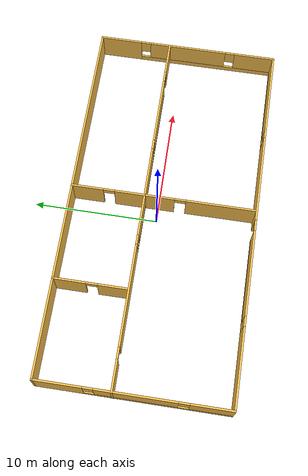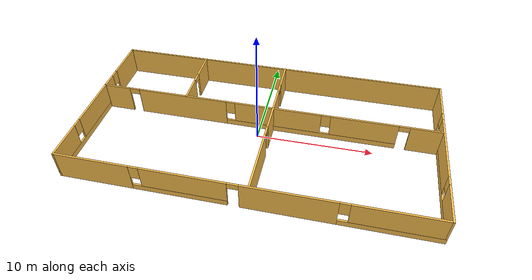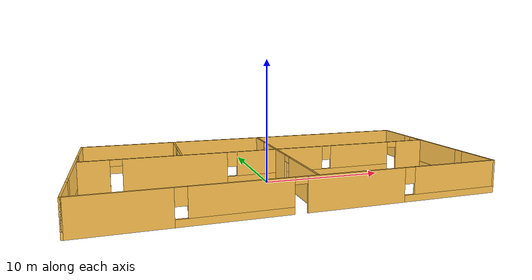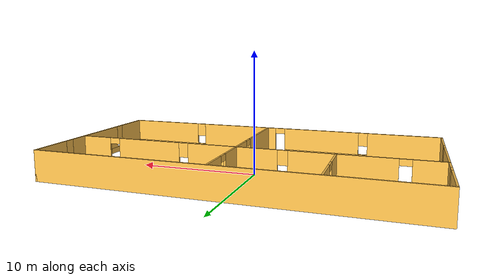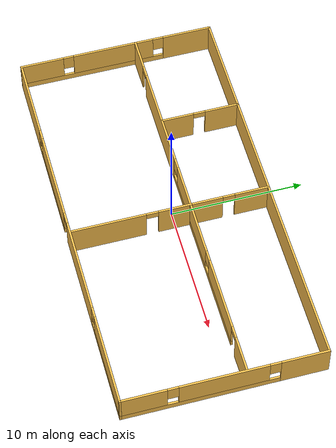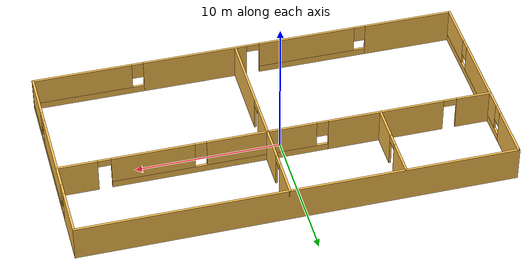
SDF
<?xml version='1.0'?>
<sdf version='1.6'>
  <model name='Building'>
    <pose frame=''>0.457 -0.407 0 0 -0 0</pose>
    <link name='Wall_1'>
      <pose frame=''>-14.92 0 0 0 0 -1.5708</pose>
      <visual name='Wall_1_Visual_0'>
        <pose frame=''>-5.60194 0 1.25 0 -0 0</pose>
        <geometry>
          <box>
            <size>3.79611 0.15 2.5</size>
          </box>
        </geometry>
        <material>
          <script>
            <uri>file://media/materials/scripts/gazebo.material</uri>
            <name>Gazebo/Grey</name>
          </script>
          <ambient>1 0.764706 0.305882 1</ambient>
        </material>
        <meta>
          <layer>0</layer>
        </meta>
      </visual>
      <collision name='Wall_1_Collision_0'>
        <geometry>
          <box>
            <size>3.79611 0.15 2.5</size>
          </box>
        </geometry>
        <pose frame=''>-5.60194 0 1.25 0 -0 0</pose>
      </collision>
      <visual name='Wall_1_Visual_1'>
        <pose frame=''>1.89806 0 0.25 0 -0 0</pose>
        <geometry>
          <box>
            <size>11.2039 0.15 0.5</size>
          </box>
        </geometry>
        <material>
          <script>
            <uri>file://media/materials/scripts/gazebo.material</uri>
            <name>Gazebo/Grey</name>
          </script>
          <ambient>1 0.764706 0.305882 1</ambient>
        </material>
        <meta>
          <layer>0</layer>
        </meta>
      </visual>
      <collision name='Wall_1_Collision_1'>
        <geometry>
          <box>
            <size>11.2039 0.15 0.5</size>
          </box>
        </geometry>
        <pose frame=''>1.89806 0 0.25 0 -0 0</pose>
      </collision>
      <visual name='Wall_1_Visual_2'>
        <pose frame=''>0.228614 0 1.5 0 -0 0</pose>
        <geometry>
          <box>
            <size>6.265 0.15 2</size>
          </box>
        </geometry>
        <material>
          <script>
            <uri>file://media/materials/scripts/gazebo.material</uri>
            <name>Gazebo/Grey</name>
          </script>
          <ambient>1 0.764706 0.305882 1</ambient>
        </material>
        <meta>
          <layer>0</layer>
        </meta>
      </visual>
      <collision name='Wall_1_Collision_2'>
        <geometry>
          <box>
            <size>6.265 0.15 2</size>
          </box>
        </geometry>
        <pose frame=''>0.228614 0 1.5 0 -0 0</pose>
      </collision>
      <visual name='Wall_1_Visual_3'>
        <pose frame=''>5.83056 0 1.5 0 -0 0</pose>
        <geometry>
          <box>
            <size>3.33888 0.15 2</size>
          </box>
        </geometry>
        <material>
          <script>
            <uri>file://media/materials/scripts/gazebo.material</uri>
            <name>Gazebo/Grey</name>
          </script>
          <ambient>1 0.764706 0.305882 1</ambient>
        </material>
        <meta>
          <layer>0</layer>
        </meta>
      </visual>
      <collision name='Wall_1_Collision_3'>
        <geometry>
          <box>
            <size>3.33888 0.15 2</size>
          </box>
        </geometry>
        <pose frame=''>5.83056 0 1.5 0 -0 0</pose>
      </collision>
      <visual name='Wall_1_Visual_4'>
        <pose frame=''>-3.30389 0 1.9 0 -0 0</pose>
        <geometry>
          <box>
            <size>0.8 0.15 1.2</size>
          </box>
        </geometry>
        <material>
          <script>
            <uri>file://media/materials/scripts/gazebo.material</uri>
            <name>Gazebo/Grey</name>
          </script>
          <ambient>1 0.764706 0.305882 1</ambient>
        </material>
        <meta>
          <layer>0</layer>
        </meta>
      </visual>
      <collision name='Wall_1_Collision_4'>
        <geometry>
          <box>
            <size>0.8 0.15 1.2</size>
          </box>
        </geometry>
        <pose frame=''>-3.30389 0 1.9 0 -0 0</pose>
      </collision>
      <visual name='Wall_1_Visual_5'>
        <pose frame=''>3.76112 0 1.9 0 -0 0</pose>
        <geometry>
          <box>
            <size>0.8 0.15 1.2</size>
          </box>
        </geometry>
        <material>
          <script>
            <uri>file://media/materials/scripts/gazebo.material</uri>
            <name>Gazebo/Grey</name>
          </script>
          <ambient>1 0.764706 0.305882 1</ambient>
        </material>
        <meta>
          <layer>0</layer>
        </meta>
      </visual>
      <collision name='Wall_1_Collision_5'>
        <geometry>
          <box>
            <size>0.8 0.15 1.2</size>
          </box>
        </geometry>
        <pose frame=''>3.76112 0 1.9 0 -0 0</pose>
      </collision>
    </link>
    <link name='Wall_12'>
      <pose frame=''>-7.157 4.5 0 0 0 -1.5708</pose>
      <visual name='Wall_12_Visual_0'>
        <pose frame=''>-1.68316 0 1.25 0 -0 0</pose>
        <geometry>
          <box>
            <size>2.63367 0.15 2.5</size>
          </box>
        </geometry>
        <material>
          <script>
            <uri>file://media/materials/scripts/gazebo.material</uri>
            <name>Gazebo/Grey</name>
          </script>
          <ambient>1 0.764706 0.305882 1</ambient>
        </material>
        <meta>
          <layer>0</layer>
        </meta>
      </visual>
      <collision name='Wall_12_Collision_0'>
        <geometry>
          <box>
            <size>2.63367 0.15 2.5</size>
          </box>
        </geometry>
        <pose frame=''>-1.68316 0 1.25 0 -0 0</pose>
      </collision>
      <visual name='Wall_12_Visual_1'>
        <pose frame=''>1.76684 0 1.25 0 -0 0</pose>
        <geometry>
          <box>
            <size>2.46633 0.15 2.5</size>
          </box>
        </geometry>
        <material>
          <script>
            <uri>file://media/materials/scripts/gazebo.material</uri>
            <name>Gazebo/Grey</name>
          </script>
          <ambient>1 0.764706 0.305882 1</ambient>
        </material>
        <meta>
          <layer>0</layer>
        </meta>
      </visual>
      <collision name='Wall_12_Collision_1'>
        <geometry>
          <box>
            <size>2.46633 0.15 2.5</size>
          </box>
        </geometry>
        <pose frame=''>1.76684 0 1.25 0 -0 0</pose>
      </collision>
      <visual name='Wall_12_Visual_2'>
        <pose frame=''>0.083673 0 2.25 0 -0 0</pose>
        <geometry>
          <box>
            <size>0.9 0.15 0.5</size>
          </box>
        </geometry>
        <material>
          <script>
            <uri>file://media/materials/scripts/gazebo.material</uri>
            <name>Gazebo/Grey</name>
          </script>
          <ambient>1 0.764706 0.305882 1</ambient>
        </material>
        <meta>
          <layer>0</layer>
        </meta>
      </visual>
      <collision name='Wall_12_Collision_2'>
        <geometry>
          <box>
            <size>0.9 0.15 0.5</size>
          </box>
        </geometry>
        <pose frame=''>0.083673 0 2.25 0 -0 0</pose>
      </collision>
    </link>
    <link name='Wall_14'>
      <pose frame=''>0.697 4.5 0 0 0 -1.5708</pose>
      <visual name='Wall_14_Visual_0'>
        <pose frame=''>-1.68316 0 1.25 0 -0 0</pose>
        <geometry>
          <box>
            <size>2.63367 0.15 2.5</size>
          </box>
        </geometry>
        <material>
          <script>
            <uri>file://media/materials/scripts/gazebo.material</uri>
            <name>Gazebo/Grey</name>
          </script>
          <ambient>1 0.764706 0.305882 1</ambient>
        </material>
        <meta>
          <layer>0</layer>
        </meta>
      </visual>
      <collision name='Wall_14_Collision_0'>
        <geometry>
          <box>
            <size>2.63367 0.15 2.5</size>
          </box>
        </geometry>
        <pose frame=''>-1.68316 0 1.25 0 -0 0</pose>
      </collision>
      <visual name='Wall_14_Visual_1'>
        <pose frame=''>1.76684 0 1.25 0 -0 0</pose>
        <geometry>
          <box>
            <size>2.46633 0.15 2.5</size>
          </box>
        </geometry>
        <material>
          <script>
            <uri>file://media/materials/scripts/gazebo.material</uri>
            <name>Gazebo/Grey</name>
          </script>
          <ambient>1 0.764706 0.305882 1</ambient>
        </material>
        <meta>
          <layer>0</layer>
        </meta>
      </visual>
      <collision name='Wall_14_Collision_1'>
        <geometry>
          <box>
            <size>2.46633 0.15 2.5</size>
          </box>
        </geometry>
        <pose frame=''>1.76684 0 1.25 0 -0 0</pose>
      </collision>
      <visual name='Wall_14_Visual_2'>
        <pose frame=''>0.083673 0 2.25 0 -0 0</pose>
        <geometry>
          <box>
            <size>0.9 0.15 0.5</size>
          </box>
        </geometry>
        <material>
          <script>
            <uri>file://media/materials/scripts/gazebo.material</uri>
            <name>Gazebo/Grey</name>
          </script>
          <ambient>1 0.764706 0.305882 1</ambient>
        </material>
        <meta>
          <layer>0</layer>
        </meta>
      </visual>
      <collision name='Wall_14_Collision_2'>
        <geometry>
          <box>
            <size>0.9 0.15 0.5</size>
          </box>
        </geometry>
        <pose frame=''>0.083673 0 2.25 0 -0 0</pose>
      </collision>
    </link>
    <link name='Wall_16'>
      <pose frame=''>0.697 -2.85 0 0 0 -1.5708</pose>
      <visual name='Wall_16_Visual_0'>
        <pose frame=''>-3.23943 0 1.25 0 -0 0</pose>
        <geometry>
          <box>
            <size>2.52114 0.15 2.5</size>
          </box>
        </geometry>
        <material>
          <script>
            <uri>file://media/materials/scripts/gazebo.material</uri>
            <name>Gazebo/Grey</name>
          </script>
          <ambient>1 0.764706 0.305882 1</ambient>
        </material>
        <meta>
          <layer>0</layer>
        </meta>
      </visual>
      <collision name='Wall_16_Collision_0'>
        <geometry>
          <box>
            <size>2.52114 0.15 2.5</size>
          </box>
        </geometry>
        <pose frame=''>-3.23943 0 1.25 0 -0 0</pose>
      </collision>
      <visual name='Wall_16_Visual_1'>
        <pose frame=''>1.71057 0 1.25 0 -0 0</pose>
        <geometry>
          <box>
            <size>5.57886 0.15 2.5</size>
          </box>
        </geometry>
        <material>
          <script>
            <uri>file://media/materials/scripts/gazebo.material</uri>
            <name>Gazebo/Grey</name>
          </script>
          <ambient>1 0.764706 0.305882 1</ambient>
        </material>
        <meta>
          <layer>0</layer>
        </meta>
      </visual>
      <collision name='Wall_16_Collision_1'>
        <geometry>
          <box>
            <size>5.57886 0.15 2.5</size>
          </box>
        </geometry>
        <pose frame=''>1.71057 0 1.25 0 -0 0</pose>
      </collision>
      <visual name='Wall_16_Visual_2'>
        <pose frame=''>-1.52886 0 2.25 0 -0 0</pose>
        <geometry>
          <box>
            <size>0.9 0.15 0.5</size>
          </box>
        </geometry>
        <material>
          <script>
            <uri>file://media/materials/scripts/gazebo.material</uri>
            <name>Gazebo/Grey</name>
          </script>
          <ambient>1 0.764706 0.305882 1</ambient>
        </material>
        <meta>
          <layer>0</layer>
        </meta>
      </visual>
      <collision name='Wall_16_Collision_2'>
        <geometry>
          <box>
            <size>0.9 0.15 0.5</size>
          </box>
        </geometry>
        <pose frame=''>-1.52886 0 2.25 0 -0 0</pose>
      </collision>
    </link>
    <link name='Wall_4'>
      <pose frame=''>0.005 -7.425 0 0 -0 0</pose>
      <visual name='Wall_4_Visual_0'>
        <pose frame=''>-11.8455 0 1.25 0 -0 0</pose>
        <geometry>
          <box>
            <size>6.30901 0.15 2.5</size>
          </box>
        </geometry>
        <material>
          <script>
            <uri>file://media/materials/scripts/gazebo.material</uri>
            <name>Gazebo/Grey</name>
          </script>
          <ambient>1 0.764706 0.305882 1</ambient>
        </material>
        <meta>
          <layer>0</layer>
        </meta>
      </visual>
      <collision name='Wall_4_Collision_0'>
        <geometry>
          <box>
            <size>6.30901 0.15 2.5</size>
          </box>
        </geometry>
        <pose frame=''>-11.8455 0 1.25 0 -0 0</pose>
      </collision>
      <visual name='Wall_4_Visual_1'>
        <pose frame=''>3.58082 0 1.25 0 -0 0</pose>
        <geometry>
          <box>
            <size>7.34783 0.15 2.5</size>
          </box>
        </geometry>
        <material>
          <script>
            <uri>file://media/materials/scripts/gazebo.material</uri>
            <name>Gazebo/Grey</name>
          </script>
          <ambient>1 0.764706 0.305882 1</ambient>
        </material>
        <meta>
          <layer>0</layer>
        </meta>
      </visual>
      <collision name='Wall_4_Collision_1'>
        <geometry>
          <box>
            <size>7.34783 0.15 2.5</size>
          </box>
        </geometry>
        <pose frame=''>3.58082 0 1.25 0 -0 0</pose>
      </collision>
      <visual name='Wall_4_Visual_2'>
        <pose frame=''>-4.84204 0 0.25 0 -0 0</pose>
        <geometry>
          <box>
            <size>7.6979 0.15 0.5</size>
          </box>
        </geometry>
        <material>
          <script>
            <uri>file://media/materials/scripts/gazebo.material</uri>
            <name>Gazebo/Grey</name>
          </script>
          <ambient>1 0.764706 0.305882 1</ambient>
        </material>
        <meta>
          <layer>0</layer>
        </meta>
      </visual>
      <collision name='Wall_4_Collision_2'>
        <geometry>
          <box>
            <size>7.6979 0.15 0.5</size>
          </box>
        </geometry>
        <pose frame=''>-4.84204 0 0.25 0 -0 0</pose>
      </collision>
      <visual name='Wall_4_Visual_3'>
        <pose frame=''>11.1274 0 0.25 0 -0 0</pose>
        <geometry>
          <box>
            <size>7.74526 0.15 0.5</size>
          </box>
        </geometry>
        <material>
          <script>
            <uri>file://media/materials/scripts/gazebo.material</uri>
            <name>Gazebo/Grey</name>
          </script>
          <ambient>1 0.764706 0.305882 1</ambient>
        </material>
        <meta>
          <layer>0</layer>
        </meta>
      </visual>
      <collision name='Wall_4_Collision_3'>
        <geometry>
          <box>
            <size>7.74526 0.15 0.5</size>
          </box>
        </geometry>
        <pose frame=''>11.1274 0 0.25 0 -0 0</pose>
      </collision>
      <visual name='Wall_4_Visual_4'>
        <pose frame=''>-4.44204 0 1.5 0 -0 0</pose>
        <geometry>
          <box>
            <size>6.8979 0.15 2</size>
          </box>
        </geometry>
        <material>
          <script>
            <uri>file://media/materials/scripts/gazebo.material</uri>
            <name>Gazebo/Grey</name>
          </script>
          <ambient>1 0.764706 0.305882 1</ambient>
        </material>
        <meta>
          <layer>0</layer>
        </meta>
      </visual>
      <collision name='Wall_4_Collision_4'>
        <geometry>
          <box>
            <size>6.8979 0.15 2</size>
          </box>
        </geometry>
        <pose frame=''>-4.44204 0 1.5 0 -0 0</pose>
      </collision>
      <visual name='Wall_4_Visual_5'>
        <pose frame=''>-4.44204 0 1.5 0 -0 0</pose>
        <geometry>
          <box>
            <size>6.8979 0.15 2</size>
          </box>
        </geometry>
        <material>
          <script>
            <uri>file://media/materials/scripts/gazebo.material</uri>
            <name>Gazebo/Grey</name>
          </script>
          <ambient>1 0.764706 0.305882 1</ambient>
        </material>
        <meta>
          <layer>0</layer>
        </meta>
      </visual>
      <collision name='Wall_4_Collision_5'>
        <geometry>
          <box>
            <size>6.8979 0.15 2</size>
          </box>
        </geometry>
        <pose frame=''>-4.44204 0 1.5 0 -0 0</pose>
      </collision>
      <visual name='Wall_4_Visual_6'>
        <pose frame=''>11.5274 0 1.5 0 -0 0</pose>
        <geometry>
          <box>
            <size>6.94526 0.15 2</size>
          </box>
        </geometry>
        <material>
          <script>
            <uri>file://media/materials/scripts/gazebo.material</uri>
            <name>Gazebo/Grey</name>
          </script>
          <ambient>1 0.764706 0.305882 1</ambient>
        </material>
        <meta>
          <layer>0</layer>
        </meta>
      </visual>
      <collision name='Wall_4_Collision_6'>
        <geometry>
          <box>
            <size>6.94526 0.15 2</size>
          </box>
        </geometry>
        <pose frame=''>11.5274 0 1.5 0 -0 0</pose>
      </collision>
      <visual name='Wall_4_Visual_7'>
        <pose frame=''>-8.29099 0 1.9 0 -0 0</pose>
        <geometry>
          <box>
            <size>0.8 0.15 1.2</size>
          </box>
        </geometry>
        <material>
          <script>
            <uri>file://media/materials/scripts/gazebo.material</uri>
            <name>Gazebo/Grey</name>
          </script>
          <ambient>1 0.764706 0.305882 1</ambient>
        </material>
        <meta>
          <layer>0</layer>
        </meta>
      </visual>
      <collision name='Wall_4_Collision_7'>
        <geometry>
          <box>
            <size>0.8 0.15 1.2</size>
          </box>
        </geometry>
        <pose frame=''>-8.29099 0 1.9 0 -0 0</pose>
      </collision>
      <visual name='Wall_4_Visual_8'>
        <pose frame=''>7.65474 0 1.9 0 -0 0</pose>
        <geometry>
          <box>
            <size>0.8 0.15 1.2</size>
          </box>
        </geometry>
        <material>
          <script>
            <uri>file://media/materials/scripts/gazebo.material</uri>
            <name>Gazebo/Grey</name>
          </script>
          <ambient>1 0.764706 0.305882 1</ambient>
        </material>
        <meta>
          <layer>0</layer>
        </meta>
      </visual>
      <collision name='Wall_4_Collision_8'>
        <geometry>
          <box>
            <size>0.8 0.15 1.2</size>
          </box>
        </geometry>
        <pose frame=''>7.65474 0 1.9 0 -0 0</pose>
      </collision>
      <visual name='Wall_4_Visual_9'>
        <pose frame=''>-0.543092 0 2.25 0 -0 0</pose>
        <geometry>
          <box>
            <size>0.9 0.15 0.5</size>
          </box>
        </geometry>
        <material>
          <script>
            <uri>file://media/materials/scripts/gazebo.material</uri>
            <name>Gazebo/Grey</name>
          </script>
          <ambient>1 0.764706 0.305882 1</ambient>
        </material>
        <meta>
          <layer>0</layer>
        </meta>
      </visual>
      <collision name='Wall_4_Collision_9'>
        <geometry>
          <box>
            <size>0.9 0.15 0.5</size>
          </box>
        </geometry>
        <pose frame=''>-0.543092 0 2.25 0 -0 0</pose>
      </collision>
      <visual name='Wall_4_Visual_10'>
        <pose frame=''>-0.543092 0 2.25 0 -0 0</pose>
        <geometry>
          <box>
            <size>0.9 0.15 0.5</size>
          </box>
        </geometry>
        <material>
          <script>
            <uri>file://media/materials/scripts/gazebo.material</uri>
            <name>Gazebo/Grey</name>
          </script>
          <ambient>1 0.764706 0.305882 1</ambient>
        </material>
        <meta>
          <layer>0</layer>
        </meta>
      </visual>
      <collision name='Wall_4_Collision_10'>
        <geometry>
          <box>
            <size>0.9 0.15 0.5</size>
          </box>
        </geometry>
        <pose frame=''>-0.543092 0 2.25 0 -0 0</pose>
      </collision>
    </link>
    <link name='Wall_6'>
      <collision name='Wall_6_Collision'>
        <geometry>
          <box>
            <size>30 0.15 2.5</size>
          </box>
        </geometry>
        <pose frame=''>0 0 1.25 0 -0 0</pose>
      </collision>
      <visual name='Wall_6_Visual'>
        <pose frame=''>0 0 1.25 0 -0 0</pose>
        <geometry>
          <box>
            <size>30 0.15 2.5</size>
          </box>
        </geometry>
        <material>
          <script>
            <uri>file://media/materials/scripts/gazebo.material</uri>
            <name>Gazebo/Grey</name>
          </script>
          <ambient>1 0.764706 0.305882 1</ambient>
        </material>
        <meta>
          <layer>0</layer>
        </meta>
      </visual>
      <pose frame=''>0.005 7.425 0 0 -0 0</pose>
    </link>
    <link name='Wall_7'>
      <pose frame=''>14.93 0 0 0 0 -1.5708</pose>
      <visual name='Wall_7_Visual_0'>
        <pose frame=''>-5.74231 0 1.25 0 -0 0</pose>
        <geometry>
          <box>
            <size>3.51538 0.15 2.5</size>
          </box>
        </geometry>
        <material>
          <script>
            <uri>file://media/materials/scripts/gazebo.material</uri>
            <name>Gazebo/Grey</name>
          </script>
          <ambient>1 0.764706 0.305882 1</ambient>
        </material>
        <meta>
          <layer>0</layer>
        </meta>
      </visual>
      <collision name='Wall_7_Collision_0'>
        <geometry>
          <box>
            <size>3.51538 0.15 2.5</size>
          </box>
        </geometry>
        <pose frame=''>-5.74231 0 1.25 0 -0 0</pose>
      </collision>
      <visual name='Wall_7_Visual_1'>
        <pose frame=''>1.75769 0 0.25 0 -0 0</pose>
        <geometry>
          <box>
            <size>11.4846 0.15 0.5</size>
          </box>
        </geometry>
        <material>
          <script>
            <uri>file://media/materials/scripts/gazebo.material</uri>
            <name>Gazebo/Grey</name>
          </script>
          <ambient>1 0.764706 0.305882 1</ambient>
        </material>
        <meta>
          <layer>0</layer>
        </meta>
      </visual>
      <collision name='Wall_7_Collision_1'>
        <geometry>
          <box>
            <size>11.4846 0.15 0.5</size>
          </box>
        </geometry>
        <pose frame=''>1.75769 0 0.25 0 -0 0</pose>
      </collision>
      <visual name='Wall_7_Visual_2'>
        <pose frame=''>0.055868 0 1.5 0 -0 0</pose>
        <geometry>
          <box>
            <size>6.48097 0.15 2</size>
          </box>
        </geometry>
        <material>
          <script>
            <uri>file://media/materials/scripts/gazebo.material</uri>
            <name>Gazebo/Grey</name>
          </script>
          <ambient>1 0.764706 0.305882 1</ambient>
        </material>
        <meta>
          <layer>0</layer>
        </meta>
      </visual>
      <collision name='Wall_7_Collision_2'>
        <geometry>
          <box>
            <size>6.48097 0.15 2</size>
          </box>
        </geometry>
        <pose frame=''>0.055868 0 1.5 0 -0 0</pose>
      </collision>
      <visual name='Wall_7_Visual_3'>
        <pose frame=''>5.79818 0 1.5 0 -0 0</pose>
        <geometry>
          <box>
            <size>3.40365 0.15 2</size>
          </box>
        </geometry>
        <material>
          <script>
            <uri>file://media/materials/scripts/gazebo.material</uri>
            <name>Gazebo/Grey</name>
          </script>
          <ambient>1 0.764706 0.305882 1</ambient>
        </material>
        <meta>
          <layer>0</layer>
        </meta>
      </visual>
      <collision name='Wall_7_Collision_3'>
        <geometry>
          <box>
            <size>3.40365 0.15 2</size>
          </box>
        </geometry>
        <pose frame=''>5.79818 0 1.5 0 -0 0</pose>
      </collision>
      <visual name='Wall_7_Visual_4'>
        <pose frame=''>-3.58462 0 1.9 0 -0 0</pose>
        <geometry>
          <box>
            <size>0.8 0.15 1.2</size>
          </box>
        </geometry>
        <material>
          <script>
            <uri>file://media/materials/scripts/gazebo.material</uri>
            <name>Gazebo/Grey</name>
          </script>
          <ambient>1 0.764706 0.305882 1</ambient>
        </material>
        <meta>
          <layer>0</layer>
        </meta>
      </visual>
      <collision name='Wall_7_Collision_4'>
        <geometry>
          <box>
            <size>0.8 0.15 1.2</size>
          </box>
        </geometry>
        <pose frame=''>-3.58462 0 1.9 0 -0 0</pose>
      </collision>
      <visual name='Wall_7_Visual_5'>
        <pose frame=''>3.69635 0 1.9 0 -0 0</pose>
        <geometry>
          <box>
            <size>0.8 0.15 1.2</size>
          </box>
        </geometry>
        <material>
          <script>
            <uri>file://media/materials/scripts/gazebo.material</uri>
            <name>Gazebo/Grey</name>
          </script>
          <ambient>1 0.764706 0.305882 1</ambient>
        </material>
        <meta>
          <layer>0</layer>
        </meta>
      </visual>
      <collision name='Wall_7_Collision_5'>
        <geometry>
          <box>
            <size>0.8 0.15 1.2</size>
          </box>
        </geometry>
        <pose frame=''>3.69635 0 1.9 0 -0 0</pose>
      </collision>
    </link>
    <link name='Wall_9'>
      <pose frame=''>-0.005 1.542 0 0 -0 0</pose>
      <visual name='Wall_9_Visual_0'>
        <pose frame=''>-13.7533 0 1.25 0 -0 0</pose>
        <geometry>
          <box>
            <size>2.49331 0.15 2.5</size>
          </box>
        </geometry>
        <material>
          <script>
            <uri>file://media/materials/scripts/gazebo.material</uri>
            <name>Gazebo/Grey</name>
          </script>
          <ambient>1 0.764706 0.305882 1</ambient>
        </material>
        <meta>
          <layer>0</layer>
        </meta>
      </visual>
      <collision name='Wall_9_Collision_0'>
        <geometry>
          <box>
            <size>2.49331 0.15 2.5</size>
          </box>
        </geometry>
        <pose frame=''>-13.7533 0 1.25 0 -0 0</pose>
      </collision>
      <visual name='Wall_9_Visual_1'>
        <pose frame=''>-7.55232 0 1.25 0 -0 0</pose>
        <geometry>
          <box>
            <size>8.10873 0.15 2.5</size>
          </box>
        </geometry>
        <material>
          <script>
            <uri>file://media/materials/scripts/gazebo.material</uri>
            <name>Gazebo/Grey</name>
          </script>
          <ambient>1 0.764706 0.305882 1</ambient>
        </material>
        <meta>
          <layer>0</layer>
        </meta>
      </visual>
      <collision name='Wall_9_Collision_1'>
        <geometry>
          <box>
            <size>8.10873 0.15 2.5</size>
          </box>
        </geometry>
        <pose frame=''>-7.55232 0 1.25 0 -0 0</pose>
      </collision>
      <visual name='Wall_9_Visual_2'>
        <pose frame=''>13.6177 0 1.25 0 -0 0</pose>
        <geometry>
          <box>
            <size>2.76464 0.15 2.5</size>
          </box>
        </geometry>
        <material>
          <script>
            <uri>file://media/materials/scripts/gazebo.material</uri>
            <name>Gazebo/Grey</name>
          </script>
          <ambient>1 0.764706 0.305882 1</ambient>
        </material>
        <meta>
          <layer>0</layer>
        </meta>
      </visual>
      <collision name='Wall_9_Collision_2'>
        <geometry>
          <box>
            <size>2.76464 0.15 2.5</size>
          </box>
        </geometry>
        <pose frame=''>13.6177 0 1.25 0 -0 0</pose>
      </collision>
      <visual name='Wall_9_Visual_3'>
        <pose frame=''>3.9187 0 0.25 0 -0 0</pose>
        <geometry>
          <box>
            <size>14.8333 0.15 0.5</size>
          </box>
        </geometry>
        <material>
          <script>
            <uri>file://media/materials/scripts/gazebo.material</uri>
            <name>Gazebo/Grey</name>
          </script>
          <ambient>1 0.764706 0.305882 1</ambient>
        </material>
        <meta>
          <layer>0</layer>
        </meta>
      </visual>
      <collision name='Wall_9_Collision_3'>
        <geometry>
          <box>
            <size>14.8333 0.15 0.5</size>
          </box>
        </geometry>
        <pose frame=''>3.9187 0 0.25 0 -0 0</pose>
      </collision>
      <visual name='Wall_9_Visual_4'>
        <pose frame=''>1.08957 0 1.5 0 -0 0</pose>
        <geometry>
          <box>
            <size>7.57507 0.15 2</size>
          </box>
        </geometry>
        <material>
          <script>
            <uri>file://media/materials/scripts/gazebo.material</uri>
            <name>Gazebo/Grey</name>
          </script>
          <ambient>1 0.764706 0.305882 1</ambient>
        </material>
        <meta>
          <layer>0</layer>
        </meta>
      </visual>
      <collision name='Wall_9_Collision_4'>
        <geometry>
          <box>
            <size>7.57507 0.15 2</size>
          </box>
        </geometry>
        <pose frame=''>1.08957 0 1.5 0 -0 0</pose>
      </collision>
      <visual name='Wall_9_Visual_5'>
        <pose frame=''>8.50624 0 1.5 0 -0 0</pose>
        <geometry>
          <box>
            <size>5.65825 0.15 2</size>
          </box>
        </geometry>
        <material>
          <script>
            <uri>file://media/materials/scripts/gazebo.material</uri>
            <name>Gazebo/Grey</name>
          </script>
          <ambient>1 0.764706 0.305882 1</ambient>
        </material>
        <meta>
          <layer>0</layer>
        </meta>
      </visual>
      <collision name='Wall_9_Collision_5'>
        <geometry>
          <box>
            <size>5.65825 0.15 2</size>
          </box>
        </geometry>
        <pose frame=''>8.50624 0 1.5 0 -0 0</pose>
      </collision>
      <visual name='Wall_9_Visual_6'>
        <pose frame=''>-3.09796 0 1.9 0 -0 0</pose>
        <geometry>
          <box>
            <size>0.8 0.15 1.2</size>
          </box>
        </geometry>
        <material>
          <script>
            <uri>file://media/materials/scripts/gazebo.material</uri>
            <name>Gazebo/Grey</name>
          </script>
          <ambient>1 0.764706 0.305882 1</ambient>
        </material>
        <meta>
          <layer>0</layer>
        </meta>
      </visual>
      <collision name='Wall_9_Collision_6'>
        <geometry>
          <box>
            <size>0.8 0.15 1.2</size>
          </box>
        </geometry>
        <pose frame=''>-3.09796 0 1.9 0 -0 0</pose>
      </collision>
      <visual name='Wall_9_Visual_7'>
        <pose frame=''>5.27711 0 1.9 0 -0 0</pose>
        <geometry>
          <box>
            <size>0.8 0.15 1.2</size>
          </box>
        </geometry>
        <material>
          <script>
            <uri>file://media/materials/scripts/gazebo.material</uri>
            <name>Gazebo/Grey</name>
          </script>
          <ambient>1 0.764706 0.305882 1</ambient>
        </material>
        <meta>
          <layer>0</layer>
        </meta>
      </visual>
      <collision name='Wall_9_Collision_7'>
        <geometry>
          <box>
            <size>0.8 0.15 1.2</size>
          </box>
        </geometry>
        <pose frame=''>5.27711 0 1.9 0 -0 0</pose>
      </collision>
      <visual name='Wall_9_Visual_8'>
        <pose frame=''>-12.0567 0 2.25 0 -0 0</pose>
        <geometry>
          <box>
            <size>0.9 0.15 0.5</size>
          </box>
        </geometry>
        <material>
          <script>
            <uri>file://media/materials/scripts/gazebo.material</uri>
            <name>Gazebo/Grey</name>
          </script>
          <ambient>1 0.764706 0.305882 1</ambient>
        </material>
        <meta>
          <layer>0</layer>
        </meta>
      </visual>
      <collision name='Wall_9_Collision_8'>
        <geometry>
          <box>
            <size>0.9 0.15 0.5</size>
          </box>
        </geometry>
        <pose frame=''>-12.0567 0 2.25 0 -0 0</pose>
      </collision>
      <visual name='Wall_9_Visual_9'>
        <pose frame=''>11.7854 0 2.25 0 -0 0</pose>
        <geometry>
          <box>
            <size>0.9 0.15 0.5</size>
          </box>
        </geometry>
        <material>
          <script>
            <uri>file://media/materials/scripts/gazebo.material</uri>
            <name>Gazebo/Grey</name>
          </script>
          <ambient>1 0.764706 0.305882 1</ambient>
        </material>
        <meta>
          <layer>0</layer>
        </meta>
      </visual>
      <collision name='Wall_9_Collision_9'>
        <geometry>
          <box>
            <size>0.9 0.15 0.5</size>
          </box>
        </geometry>
        <pose frame=''>11.7854 0 2.25 0 -0 0</pose>
      </collision>
    </link>
    <static>1</static>
  </model>
</sdf>
